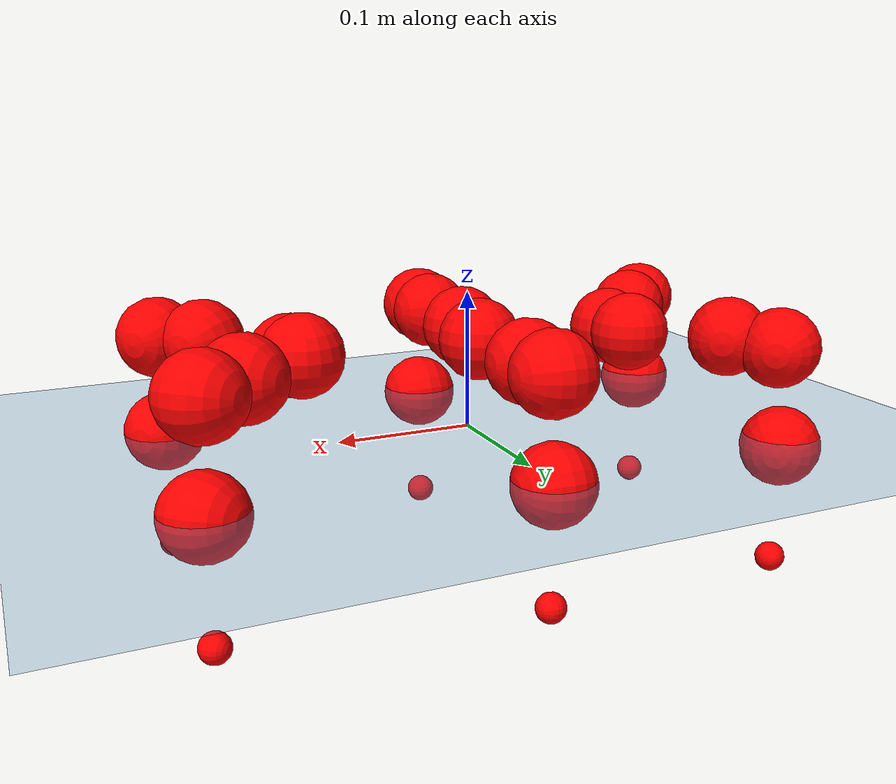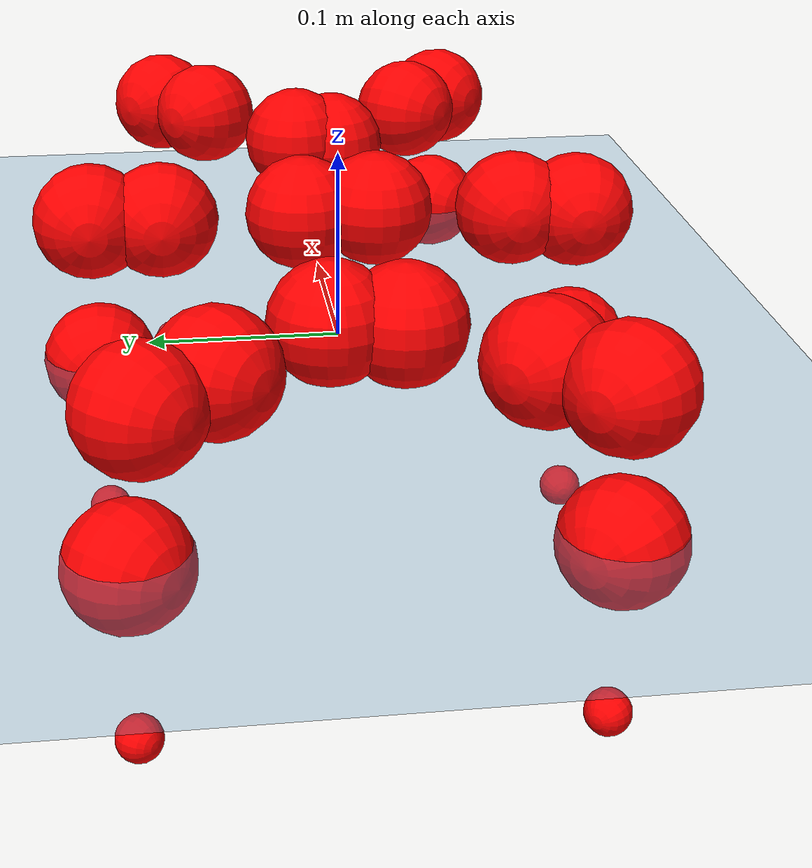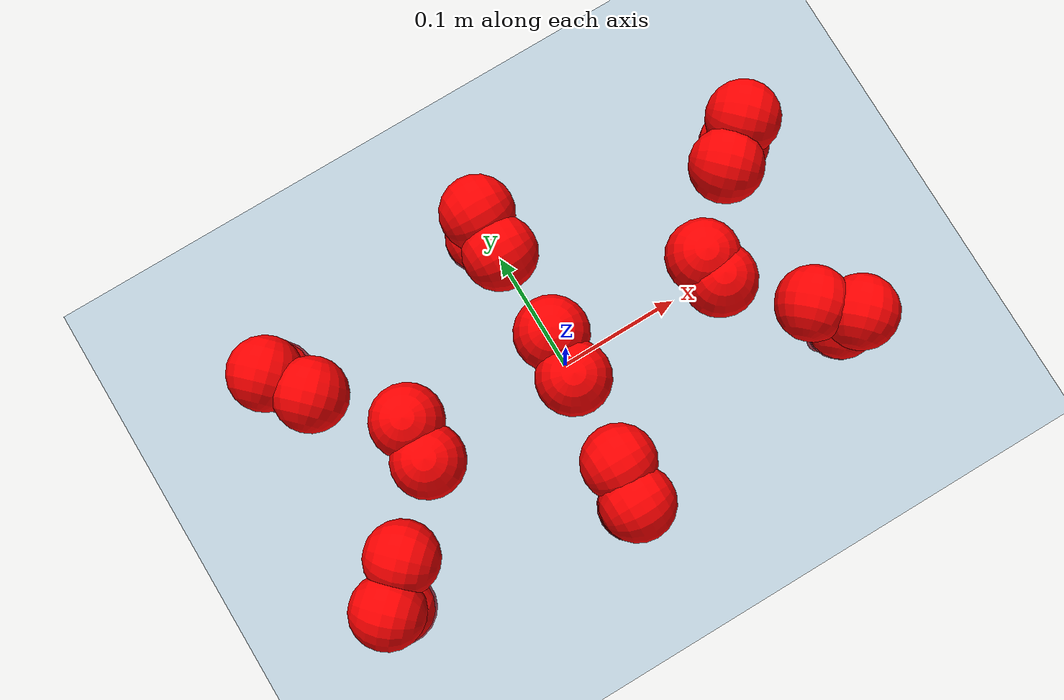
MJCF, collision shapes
<mujoco model="Golem">
  <compiler angle="radian" assetdir="assets" balanceinertia="true" inertiafromgeom="false"/>

  <option timestep="0.005" density="1.2" viscosity="2e-05"/>

  <size nkey="1"/>

  <visual>
    <quality shadowsize="8192"/>
    <map shadowclip="0.5"/>
  </visual>

  <default>
    <default class="/">
      <joint armature="0.01" damping="0.01" frictionloss="0.01"/>
      <geom contype="0" conaffinity="0" group="1" solref="-1000 -80"/>
      <site size="0.01 0.005 0.005" group="5"/>
      <general forcelimited="true" biastype="affine" gainprm="25" biasprm="0 -25 -0.5"/>
      <default class="visual">
        <geom type="mesh" group="2"/>
      </default>
      <default class="collision">
        <geom group="3"/>
      </default>
      <default class="foot">
        <geom size="0.01 0 0" condim="6" group="4" priority="1" solimp="0.015 1 0.01"/>
      </default>
      <default class="reward_collision_sphere">
        <geom group="5" rgba="1 0 0 1"/>
      </default>
    </default>
  </default>

  <asset>
    <texture type="skybox" colorspace="auto" name="//unnamed_texture_0" builtin="gradient" rgb1="0.95 0.95 0.95" rgb2="0.95 0.95 0.95" width="100" height="600"/>
    <texture type="2d" colorspace="auto" name="texplane" builtin="checker" rgb1="0.345 0.575 0.748" rgb2="0.345 0.575 0.748" markrgb="1 1 1" width="512" height="512"/>
    <material name="MatPlane" class="/" texture="texplane" texuniform="true" texrepeat="2 2" specular="0.9"/>
    <mesh name="body" class="/" file="body.stl" scale="0.001 0.001 0.001"/>
    <mesh name="coxa" class="/" file="coxa.stl" scale="0.001 0.001 0.001"/>
    <mesh name="femur" class="/" file="femur.stl" scale="0.001 0.001 0.001"/>
    <mesh name="tibia" class="/" file="tibia.stl" scale="0.001 0.001 0.001"/>
    <mesh name="tarsus" class="/" file="tarsus.stl" scale="0.001 0.001 0.001"/>
  </asset>

  <worldbody>
    <geom name="floor" class="/" size="100 100 0.125" type="plane" group="0" material="MatPlane"/>
    <light name="toplight_shadow" class="/" pos="0 0 5" dir="0.0990148 0.0990148 -0.990148" type="directional" ambient="0.04 0.04 0.04" diffuse="0.55 0.55 0.55" specular="0.12 0.12 0.12"/>
    <light name="toplight_fill" class="/" pos="0 0 5" dir="0.0990148 0.0990148 -0.990148" type="directional" castshadow="false" ambient="0.04 0.04 0.04" diffuse="0.3 0.3 0.3" specular="0.08 0.08 0.08"/>
    <body name="trunk" pos="7.92403e-06 -9.19318e-05 0.00235865" quat="0.999999 -0.000902008 -0.000331576 -0.000301278">
      <inertial pos="0.00326646 0.000143417 -0.00276592" quat="1 0.000594832 0.000211455 0.000201879" mass="1.42463" diaginertia="0.00387693 5.31406e-05 0.0111504"/>
      <joint name="//unnamed_joint_0" type="free"/>
      <geom name="//unnamed_geom_1" class="/" pos="0 0 0.0648888" quat="1 0 0 0" type="mesh" rgba="0.9 0.9 0.9 1" mesh="body"/>
      <site name="imu" class="/" pos="0.100259 -0.0107731 0.097523" size="0.00728899"/>
      <camera name="track" class="/" pos="0 -0.702818 0" quat="0.707107 0.707107 0 0" mode="trackcom"/>
      <camera name="ego_camera" class="/" pos="0.106782 0 0.101389" quat="-0.5 -0.5 0.5 0.5"/>
      <body name="coxa_RR" pos="-0.145344 -0.0324153 0.0591075" quat="0.381805 1.56943e-05 0.000156769 -0.924243">
        <inertial pos="-0.00109652 0.000790558 0.000754064" quat="0.999962 0.00492393 -6.91286e-05 0.00718531" mass="0.0759808" diaginertia="0.00376171 5.33335e-05 0.0109064"/>
        <joint name="coxa_joint_RR" class="/" pos="0 0 0" axis="-0.00605087 -0.00391169 -0.999974" stiffness="0.00730611" range="-3.15414 3.15286" armature="0.00721346" damping="0" frictionloss="0.00805176"/>
        <geom name="//unnamed_geom_2" class="/" type="mesh" rgba="0.2 0.2 0.2 1" mesh="coxa"/>
        <geom name="//unnamed_geom_3" class="reward_collision_sphere" size="0.029156" pos="-0.024642 0 0"/>
        <body name="femur_RR" pos="0.0489934 -7.61957e-05 0.00303951" quat="0.50056 -0.499641 0.499892 0.499906">
          <inertial pos="-0.000934815 0.000761627 -0.00233164" quat="1 8.65255e-05 -0.000141314 -1.15013e-05" mass="0.0768447" diaginertia="0.0038545 5.5112e-05 0.0103383"/>
          <joint name="femur_joint_RR" class="/" pos="0 0 0" axis="-0.0119337 0.0039802 -0.999921" range="-3.15219 3.1263" armature="0.00738747" damping="0" frictionloss="0.00631176"/>
          <geom name="//unnamed_geom_4" class="/" type="mesh" rgba="0.9 0.9 0.9 1" mesh="femur"/>
          <geom name="//unnamed_geom_5" class="reward_collision_sphere" size="0.029156"/>
          <body name="tibia_RR" pos="0.000218291 -0.0397082 -0.000109036" quat="0.000154817 1 0.000585396 -5.57541e-05">
            <inertial pos="0.000658339 0.00217941 0.00146326" quat="1 4.06482e-05 0.000194987 -0.000396277" mass="0.0778806" diaginertia="0.00360871 5.36228e-05 0.0106798"/>
            <joint name="tibia_joint_RR" class="/" pos="0 0 0" axis="0.00218155 -0.00381885 0.99999" stiffness="0.00995531" range="-3.15878 3.12789" armature="0.00712384" damping="0.00882611" frictionloss="0.00674895"/>
            <geom name="//unnamed_geom_6" class="/" type="mesh" rgba="0.2 0.2 0.2 1" mesh="tibia"/>
            <geom name="//unnamed_geom_7" class="reward_collision_sphere" size="0.029156"/>
            <body name="tarsus_RR" pos="0.0722951 0.00153888 -0.000553681" quat="0.999999 0.000253843 -0.00079684 -0.00115943">
              <inertial pos="0.0494891 -0.000587045 0.00175955" quat="0.50339 0.497087 0.499761 0.499743" mass="0.078755" diaginertia="0.00396415 5.36873e-05 0.0112983"/>
              <joint name="tarsus_joint_RR" class="/" pos="0 0 0" axis="0.000115812 0.00164852 0.999999" range="-3.19151 3.11144" armature="0.00640017" damping="0.0160254" frictionloss="0.0079512"/>
              <geom name="//unnamed_geom_8" class="/" type="mesh" rgba="0.9 0.9 0.9 1" mesh="tarsus"/>
              <geom name="foot_1" class="foot" size="0.00788229" pos="0.0919968 0 0" quat="0 -0.707107 0 0.707107"/>
              <geom name="//unnamed_geom_10" class="reward_collision_sphere" size="0.029156"/>
              <geom name="//unnamed_geom_11" class="reward_collision_sphere" size="0.0109335" pos="0.0883005 0 0"/>
              <site name="foot_1" class="foot" pos="0.0919968 0 0" quat="0 -0.707107 0 0.707107" size="0.00728899"/>
            </body>
          </body>
        </body>
      </body>
      <body name="coxa_RM" pos="-0.00417969 -0.0432106 0.0692317" quat="0.706957 -0.000218272 2.32348e-07 -0.707256">
        <inertial pos="0.00259015 0.000170908 0.00280456" quat="1 -0.000165335 0.000303409 -0.000270805" mass="0.075061" diaginertia="0.00366816 5.22333e-05 0.0104892"/>
        <joint name="coxa_joint_RM" class="/" pos="0 0 0" axis="-0.000924822 -0.000759868 -0.999999" range="-3.13926 3.14722" armature="0.00669593" damping="0.0178437" frictionloss="0.00680249"/>
        <geom name="//unnamed_geom_12" class="/" type="mesh" rgba="0.2 0.2 0.2 1" mesh="coxa"/>
        <geom name="//unnamed_geom_13" class="reward_collision_sphere" size="0.029156" pos="-0.024642 0 0"/>
        <body name="femur_RM" pos="0.0456701 -0.00380336 -0.00160641" quat="0.500138 -0.49995 0.499952 0.499961">
          <inertial pos="0.00187844 0.00205329 0.000371007" quat="0.999931 0.00842767 0.00802236 -0.00130575" mass="0.0811434" diaginertia="0.00385118 5.24781e-05 0.0104944"/>
          <joint name="femur_joint_RM" class="/" pos="0 0 0" axis="-0.0133522 0.00220755 -0.999908" stiffness="0.000501774" range="-3.19016 3.15646" armature="0.00718529" damping="0.0170752" frictionloss="0.0078738"/>
          <geom name="//unnamed_geom_14" class="/" type="mesh" rgba="0.9 0.9 0.9 1" mesh="femur"/>
          <geom name="//unnamed_geom_15" class="reward_collision_sphere" size="0.029156"/>
          <body name="tibia_RM" pos="0.000953285 -0.0328722 -0.00360529" quat="-0.000286264 1 0.000129822 0.000452196">
            <inertial pos="0.00279647 -0.00328941 0.000263353" quat="1 0.000123074 -7.52611e-05 -0.000757263" mass="0.0769376" diaginertia="0.00367258 5.275e-05 0.0106398"/>
            <joint name="tibia_joint_RM" class="/" pos="0 0 0" axis="-0.00101323 0.00212467 0.999997" range="-3.10268 3.08527" armature="0.00710414" damping="0.0205709" frictionloss="0.00668727"/>
            <geom name="//unnamed_geom_16" class="/" type="mesh" rgba="0.2 0.2 0.2 1" mesh="tibia"/>
            <geom name="//unnamed_geom_17" class="reward_collision_sphere" size="0.029156"/>
            <body name="tarsus_RM" pos="0.0750071 0.000745997 -0.000596572" quat="1 -0.000260211 0.000135802 -0.000107015">
              <inertial pos="0.05129 -0.00196119 -0.000152216" quat="0.500279 0.504045 0.493654 0.501962" mass="0.0791929" diaginertia="0.00384997 5.52845e-05 0.0104594"/>
              <joint name="tarsus_joint_RM" class="/" pos="0 0 0" axis="0.00058946 -0.000595801 1" stiffness="0.00600226" range="-3.15963 3.18943" armature="0.00649962" damping="0.00597532" frictionloss="0.00711237"/>
              <geom name="//unnamed_geom_18" class="/" type="mesh" rgba="0.9 0.9 0.9 1" mesh="tarsus"/>
              <geom name="foot_2" class="foot" size="0.00710283" pos="0.0919968 0 0" quat="0 -0.707107 0 0.707107"/>
              <geom name="//unnamed_geom_20" class="reward_collision_sphere" size="0.029156"/>
              <geom name="//unnamed_geom_21" class="reward_collision_sphere" size="0.0109335" pos="0.0883005 0 0"/>
              <site name="foot_2" class="foot" pos="0.0919968 0 0" quat="0 -0.707107 0 0.707107" size="0.00728899"/>
            </body>
          </body>
        </body>
      </body>
      <body name="coxa_RF" pos="0.146314 -0.0286774 0.0619547" quat="0.923716 1.09671e-05 -0.00039134 -0.383078">
        <inertial pos="-0.00109017 0.00223837 0.00219518" quat="0.999978 -0.006329 0.00210132 -0.000340644" mass="0.074665" diaginertia="0.00379352 5.47759e-05 0.0106942"/>
        <joint name="coxa_joint_RF" class="/" pos="0 0 0" axis="0.0028165 -0.00196856 -0.999994" range="-3.19378 3.12444" armature="0.00660704" damping="0.0277455" frictionloss="0.00692716"/>
        <geom name="//unnamed_geom_22" class="/" type="mesh" rgba="0.2 0.2 0.2 1" mesh="coxa"/>
        <geom name="//unnamed_geom_23" class="reward_collision_sphere" size="0.029156" pos="-0.024642 0 0"/>
        <body name="femur_RF" pos="0.0462412 -0.0017913 0.00445956" quat="0.500024 -0.500128 0.50002 0.499828">
          <inertial pos="0.000451158 -0.00119054 -0.000633036" quat="0.999987 -0.0042083 -0.00232136 0.00185629" mass="0.0759242" diaginertia="0.00368865 5.49096e-05 0.010539"/>
          <joint name="femur_joint_RF" class="/" pos="0 0 0" axis="-0.00427161 0.0126439 -0.999911" stiffness="0.00311839" range="-3.10973 3.13985" armature="0.00791501" damping="0" frictionloss="0.00748509"/>
          <geom name="//unnamed_geom_24" class="/" type="mesh" rgba="0.9 0.9 0.9 1" mesh="femur"/>
          <geom name="//unnamed_geom_25" class="reward_collision_sphere" size="0.029156"/>
          <body name="tibia_RF" pos="0.000565133 -0.036432 0.00249921" quat="-0.000485709 1 -0.000166998 -0.000336301">
            <inertial pos="0.00111108 0.00235076 -0.00275631" quat="0.999968 0.00760893 -0.00227171 -0.00106684" mass="0.0774942" diaginertia="0.00374016 5.15448e-05 0.0100948"/>
            <joint name="tibia_joint_RF" class="/" pos="0 0 0" axis="0.000433997 -0.000195998 1" stiffness="0.00127258" range="-3.18362 3.15835" armature="0.00624844" damping="0.00873548" frictionloss="0.00727227"/>
            <geom name="//unnamed_geom_26" class="/" type="mesh" rgba="0.2 0.2 0.2 1" mesh="tibia"/>
            <geom name="//unnamed_geom_27" class="reward_collision_sphere" size="0.029156"/>
            <body name="tarsus_RF" pos="0.0699246 -0.000828576 -0.00223495" quat="1 4.24164e-05 -0.000185844 0.000138759">
              <inertial pos="0.0502503 -0.000832262 -0.00184597" quat="0.500502 0.495202 0.502146 0.502118" mass="0.0760667" diaginertia="0.00375036 5.32239e-05 0.0107831"/>
              <joint name="tarsus_joint_RF" class="/" pos="0 0 0" axis="-0.00496933 0.00217079 0.999985" stiffness="0.000202141" range="-3.16107 3.18746" armature="0.007362" damping="0.0171241" frictionloss="0.00787931"/>
              <geom name="//unnamed_geom_28" class="/" type="mesh" rgba="0.9 0.9 0.9 1" mesh="tarsus"/>
              <geom name="foot_3" class="foot" size="0.00798091" pos="0.0919968 0 0" quat="0 -0.707107 0 0.707107"/>
              <geom name="//unnamed_geom_30" class="reward_collision_sphere" size="0.029156"/>
              <geom name="//unnamed_geom_31" class="reward_collision_sphere" size="0.0109335" pos="0.0883005 0 0"/>
              <site name="foot_3" class="foot" pos="0.0919968 0 0" quat="0 -0.707107 0 0.707107" size="0.00728899"/>
            </body>
          </body>
        </body>
      </body>
      <body name="coxa_LR" pos="-0.143894 0.0358754 0.0610914" quat="0.38274 3.08801e-05 0.000262721 0.923856">
        <inertial pos="-0.000241385 -0.00182537 -0.00186351" quat="0.99999 0.00398192 0.000920979 0.00195208" mass="0.0790593" diaginertia="0.00388929 5.44103e-05 0.0108805"/>
        <joint name="coxa_joint_LR" class="/" pos="0 0 0" axis="0.00493392 -0.00341995 -0.999982" range="-3.18129 3.14544" armature="0.00621528" damping="0.0214245" frictionloss="0.00764303"/>
        <geom name="//unnamed_geom_32" class="/" type="mesh" rgba="0.2 0.2 0.2 1" mesh="coxa"/>
        <geom name="//unnamed_geom_33" class="reward_collision_sphere" size="0.029156" pos="-0.024642 0 0"/>
        <body name="femur_LR" pos="0.0490045 -0.00177049 0.00249455" quat="0.49999 -0.50014 0.49999 0.499879">
          <inertial pos="0.00291595 -0.0012582 -0.00104228" quat="0.999988 -0.00372176 0.00303658 -0.000783488" mass="0.0757754" diaginertia="0.00373549 5.31461e-05 0.0110246"/>
          <joint name="femur_joint_LR" class="/" pos="0 0 0" axis="0.0014754 -0.000550613 0.999999" stiffness="0.00401995" range="-3.08892 3.09675" armature="0.00737067" damping="0.0125922" frictionloss="0.00667734"/>
          <geom name="//unnamed_geom_34" class="/" type="mesh" rgba="0.9 0.9 0.9 1" mesh="femur"/>
          <geom name="//unnamed_geom_35" class="reward_collision_sphere" size="0.029156"/>
          <body name="tibia_LR" pos="0.00386361 -0.0379487 -0.00710446" quat="0.000451352 1 -0.000420354 0.000142684">
            <inertial pos="0.00302298 -0.0038171 0.00398659" quat="0.999921 0.00381714 0.00644184 -0.01007" mass="0.0734047" diaginertia="0.00366258 5.32528e-05 0.0104733"/>
            <joint name="tibia_joint_LR" class="/" pos="0 0 0" axis="-0.00435729 -0.00539494 -0.999976" range="-3.08778 3.14152" armature="0.00764721" damping="0.00660542" frictionloss="0.00640835"/>
            <geom name="//unnamed_geom_36" class="/" type="mesh" rgba="0.2 0.2 0.2 1" mesh="tibia"/>
            <geom name="//unnamed_geom_37" class="reward_collision_sphere" size="0.029156"/>
            <body name="tarsus_LR" pos="0.0718172 0.00636852 0.00469527" quat="0.999999 0.0010901 0.000435255 0.000182737">
              <inertial pos="0.0494128 -0.00163282 -0.00127556" quat="0.500146 0.497559 0.499618 0.502664" mass="0.0791707" diaginertia="0.00383291 5.31e-05 0.0108682"/>
              <joint name="tarsus_joint_LR" class="/" pos="0 0 0" axis="-0.0130712 0.000886972 -0.999914" range="-3.15372 3.13487" armature="0.00727784" damping="0.0195555" frictionloss="0.00776209"/>
              <geom name="//unnamed_geom_38" class="/" type="mesh" rgba="0.9 0.9 0.9 1" mesh="tarsus"/>
              <geom name="foot_4" class="foot" size="0.00731713" pos="0.0919968 0 0" quat="0.707107 0 -0.707107 0"/>
              <geom name="//unnamed_geom_40" class="reward_collision_sphere" size="0.029156"/>
              <geom name="//unnamed_geom_41" class="reward_collision_sphere" size="0.0109335" pos="0.0883005 0 0"/>
              <site name="foot_4" class="foot" pos="0.0919968 0 0" quat="0.707107 0 -0.707107 0" size="0.00728899"/>
            </body>
          </body>
        </body>
      </body>
      <body name="coxa_LM" pos="-0.000836487 0.0431883 0.067242" quat="0.70729 0.000714608 0.000778373 0.706922">
        <inertial pos="-0.00254716 -0.000228156 0.00210161" quat="0.999994 -0.00182786 -0.00249305 0.00135463" mass="0.0727528" diaginertia="0.00356506 5.23152e-05 0.0107698"/>
        <joint name="coxa_joint_LM" class="/" pos="0 0 0" axis="-0.00103645 0.000116044 -0.999999" range="-3.14997 3.1001" armature="0.00666656" damping="0.0180506" frictionloss="0.00758055"/>
        <geom name="//unnamed_geom_42" class="/" type="mesh" rgba="0.2 0.2 0.2 1" mesh="coxa"/>
        <geom name="//unnamed_geom_43" class="reward_collision_sphere" size="0.029156" pos="-0.024642 0 0"/>
        <body name="femur_LM" pos="0.0473235 0.0019178 -0.000200811" quat="0.500005 -0.499952 0.500029 0.500014">
          <inertial pos="0.000654076 -0.00133998 0.000181834" quat="0.999945 -0.0037363 0.00984249 -0.000214276" mass="0.0775165" diaginertia="0.00367766 5.39209e-05 0.0108048"/>
          <joint name="femur_joint_LM" class="/" pos="0 0 0" axis="-0.000313885 0.0133265 0.999911" stiffness="0.0123751" range="-3.09287 3.13353" armature="0.00631724" damping="0.0120248" frictionloss="0.00797521"/>
          <geom name="//unnamed_geom_44" class="/" type="mesh" rgba="0.9 0.9 0.9 1" mesh="femur"/>
          <geom name="//unnamed_geom_45" class="reward_collision_sphere" size="0.029156"/>
          <body name="tibia_LM" pos="-0.000500387 -0.035228 -0.000909559" quat="-0.00036853 1 0.000305225 0.000327198">
            <inertial pos="0.00120497 -0.00222063 0.000593239" quat="1 0.000402961 0.000232193 -0.000126159" mass="0.0801736" diaginertia="0.0038075 5.42789e-05 0.0110297"/>
            <joint name="tibia_joint_LM" class="/" pos="0 0 0" axis="3.06307e-05 -6.63372e-05 -1" stiffness="0.00903998" range="-3.11543 3.14263" armature="0.00760571" damping="0.00460649" frictionloss="0.00646335"/>
            <geom name="//unnamed_geom_46" class="/" type="mesh" rgba="0.2 0.2 0.2 1" mesh="tibia"/>
            <geom name="//unnamed_geom_47" class="reward_collision_sphere" size="0.029156"/>
            <body name="tarsus_LM" pos="0.0750222 -0.000617258 -0.00245454" quat="1 0.000121446 9.26718e-06 6.7265e-05">
              <inertial pos="0.0468643 -0.0017428 -0.000140511" quat="0.502362 0.500082 0.497473 0.500071" mass="0.0770847" diaginertia="0.00383106 5.46666e-05 0.0110012"/>
              <joint name="tarsus_joint_LM" class="/" pos="0 0 0" axis="0.00292328 -0.00180794 -0.999994" range="-3.08847 3.11234" armature="0.00723099" damping="0" frictionloss="0.0070762"/>
              <geom name="//unnamed_geom_48" class="/" type="mesh" rgba="0.9 0.9 0.9 1" mesh="tarsus"/>
              <geom name="foot_5" class="foot" size="0.00773943" pos="0.0919968 0 0" quat="0.707107 0 -0.707107 0"/>
              <geom name="//unnamed_geom_50" class="reward_collision_sphere" size="0.029156"/>
              <geom name="//unnamed_geom_51" class="reward_collision_sphere" size="0.0109335" pos="0.0883005 0 0"/>
              <site name="foot_5" class="foot" pos="0.0919968 0 0" quat="0.707107 0 -0.707107 0" size="0.00728899"/>
            </body>
          </body>
        </body>
      </body>
      <body name="coxa_LF" pos="0.143835 0.0272799 0.0660379" quat="0.924262 0.000241915 0.000716662 0.381758">
        <inertial pos="-0.00110733 -0.00128293 -0.000830463" quat="0.99993 -0.000470705 0.00818697 0.00858522" mass="0.0756249" diaginertia="0.00367203 5.28255e-05 0.0105761"/>
        <joint name="coxa_joint_LF" class="/" pos="0 0 0" axis="0.00472533 -0.00563845 -0.999973" range="-3.17088 3.08324" armature="0.00733392" damping="0.00426093" frictionloss="0.00818295"/>
        <geom name="//unnamed_geom_52" class="/" type="mesh" rgba="0.2 0.2 0.2 1" mesh="coxa"/>
        <geom name="//unnamed_geom_53" class="reward_collision_sphere" size="0.029156" pos="-0.024642 0 0"/>
        <body name="femur_LF" pos="0.0473684 -0.000909692 0.00205834" quat="0.500831 -0.49988 0.499843 0.499445">
          <inertial pos="0.00141247 0.000193514 -0.00122355" quat="0.999958 -0.00600908 0.00609855 -0.00318876" mass="0.0782096" diaginertia="0.003651 5.45121e-05 0.0105458"/>
          <joint name="femur_joint_LF" class="/" pos="0 0 0" axis="0.0102666 -0.00633846 0.999927" range="-3.15072 3.08632" armature="0.00723523" damping="0.00707998" frictionloss="0.00807579"/>
          <geom name="//unnamed_geom_54" class="/" type="mesh" rgba="0.9 0.9 0.9 1" mesh="femur"/>
          <geom name="//unnamed_geom_55" class="reward_collision_sphere" size="0.029156"/>
          <body name="tibia_LF" pos="0.000848877 -0.0394753 -0.00372503" quat="0.000358631 1 0.000199503 -8.79692e-06">
            <inertial pos="0.00161286 -0.000398606 -0.000685142" quat="0.999921 0.00173611 0.00357947 0.0118976" mass="0.0789524" diaginertia="0.00360238 5.17516e-05 0.0103589"/>
            <joint name="tibia_joint_LF" class="/" pos="0 0 0" axis="-0.0117947 0.00283763 -0.999926" stiffness="0.000211864" range="-3.10857 3.13228" armature="0.00825003" damping="0.00192322" frictionloss="0.00667305"/>
            <geom name="//unnamed_geom_56" class="/" type="mesh" rgba="0.2 0.2 0.2 1" mesh="tibia"/>
            <geom name="//unnamed_geom_57" class="reward_collision_sphere" size="0.029156"/>
            <body name="tarsus_LF" pos="0.0744836 0.00260904 0.00244159" quat="1 -0.00019675 0.00019666 -0.000224263">
              <inertial pos="0.0475978 0.000629767 -0.00139062" quat="0.499861 0.499911 0.500241 0.499987" mass="0.0729988" diaginertia="0.00373111 5.18183e-05 0.0104205"/>
              <joint name="tarsus_joint_LF" class="/" pos="0 0 0" axis="-0.00550728 0.00228601 -0.999982" stiffness="0.0377275" range="-3.13784 3.18183" armature="0.0074804" damping="0.0331182" frictionloss="0.0076773"/>
              <geom name="//unnamed_geom_58" class="/" type="mesh" rgba="0.9 0.9 0.9 1" mesh="tarsus"/>
              <geom name="foot_6" class="foot" size="0.00745802" pos="0.0919968 0 0" quat="0.707107 0 -0.707107 0"/>
              <geom name="//unnamed_geom_60" class="reward_collision_sphere" size="0.029156"/>
              <geom name="//unnamed_geom_61" class="reward_collision_sphere" size="0.0109335" pos="0.0883005 0 0"/>
              <site name="foot_6" class="foot" pos="0.0919968 0 0" quat="0.707107 0 -0.707107 0" size="0.00728899"/>
            </body>
          </body>
        </body>
      </body>
    </body>
  </worldbody>

  <contact>
    <pair class="/" geom1="floor" geom2="foot_1" name="//unnamed_contact_0"/>
    <pair class="/" geom1="floor" geom2="foot_2" name="//unnamed_contact_1"/>
    <pair class="/" geom1="floor" geom2="foot_3" name="//unnamed_contact_2"/>
    <pair class="/" geom1="floor" geom2="foot_4" name="//unnamed_contact_3"/>
    <pair class="/" geom1="floor" geom2="foot_5" name="//unnamed_contact_4"/>
    <pair class="/" geom1="floor" geom2="foot_6" name="//unnamed_contact_5"/>
  </contact>

  <actuator>
    <general name="coxa_joint_RR" class="/" joint="coxa_joint_RR" forcerange="-5.58553 5.58553" gainprm="18.899" biasprm="0 -18.899 -0.381388"/>
    <general name="femur_joint_RR" class="/" joint="femur_joint_RR" forcerange="-5.86306 5.86306" gainprm="18.899" biasprm="0 -18.899 -0.381388"/>
    <general name="tibia_joint_RR" class="/" joint="tibia_joint_RR" forcerange="-4.84985 4.84985" gainprm="18.899" biasprm="0 -18.899 -0.381388"/>
    <general name="tarsus_joint_RR" class="/" joint="tarsus_joint_RR" forcerange="-5.69892 5.69892" gainprm="18.899" biasprm="0 -18.899 -0.381388"/>
    <general name="coxa_joint_RM" class="/" joint="coxa_joint_RM" forcerange="-5.56532 5.56532" gainprm="18.899" biasprm="0 -18.899 -0.381388"/>
    <general name="femur_joint_RM" class="/" joint="femur_joint_RM" forcerange="-5.40128 5.40128" gainprm="18.899" biasprm="0 -18.899 -0.381388"/>
    <general name="tibia_joint_RM" class="/" joint="tibia_joint_RM" forcerange="-4.78693 4.78693" gainprm="18.899" biasprm="0 -18.899 -0.381388"/>
    <general name="tarsus_joint_RM" class="/" joint="tarsus_joint_RM" forcerange="-5.00428 5.00428" gainprm="18.899" biasprm="0 -18.899 -0.381388"/>
    <general name="coxa_joint_RF" class="/" joint="coxa_joint_RF" forcerange="-5.22828 5.22828" gainprm="18.899" biasprm="0 -18.899 -0.381388"/>
    <general name="femur_joint_RF" class="/" joint="femur_joint_RF" forcerange="-5.42423 5.42423" gainprm="18.899" biasprm="0 -18.899 -0.381388"/>
    <general name="tibia_joint_RF" class="/" joint="tibia_joint_RF" forcerange="-4.77444 4.77444" gainprm="18.899" biasprm="0 -18.899 -0.381388"/>
    <general name="tarsus_joint_RF" class="/" joint="tarsus_joint_RF" forcerange="-5.24283 5.24283" gainprm="18.899" biasprm="0 -18.899 -0.381388"/>
    <general name="coxa_joint_LR" class="/" joint="coxa_joint_LR" forcerange="-5.82946 5.82946" gainprm="18.899" biasprm="0 -18.899 -0.381388"/>
    <general name="femur_joint_LR" class="/" joint="femur_joint_LR" forcerange="-5.01386 5.01386" gainprm="18.899" biasprm="0 -18.899 -0.381388"/>
    <general name="tibia_joint_LR" class="/" joint="tibia_joint_LR" forcerange="-4.78001 4.78001" gainprm="18.899" biasprm="0 -18.899 -0.381388"/>
    <general name="tarsus_joint_LR" class="/" joint="tarsus_joint_LR" forcerange="-5.12441 5.12441" gainprm="18.899" biasprm="0 -18.899 -0.381388"/>
    <general name="coxa_joint_LM" class="/" joint="coxa_joint_LM" forcerange="-5.36335 5.36335" gainprm="18.899" biasprm="0 -18.899 -0.381388"/>
    <general name="femur_joint_LM" class="/" joint="femur_joint_LM" forcerange="-5.37646 5.37646" gainprm="18.899" biasprm="0 -18.899 -0.381388"/>
    <general name="tibia_joint_LM" class="/" joint="tibia_joint_LM" forcerange="-5.62328 5.62328" gainprm="18.899" biasprm="0 -18.899 -0.381388"/>
    <general name="tarsus_joint_LM" class="/" joint="tarsus_joint_LM" forcerange="-5.35605 5.35605" gainprm="18.899" biasprm="0 -18.899 -0.381388"/>
    <general name="coxa_joint_LF" class="/" joint="coxa_joint_LF" forcerange="-5.38616 5.38616" gainprm="18.899" biasprm="0 -18.899 -0.381388"/>
    <general name="femur_joint_LF" class="/" joint="femur_joint_LF" forcerange="-5.3352 5.3352" gainprm="18.899" biasprm="0 -18.899 -0.381388"/>
    <general name="tibia_joint_LF" class="/" joint="tibia_joint_LF" forcerange="-5.51415 5.51415" gainprm="18.899" biasprm="0 -18.899 -0.381388"/>
    <general name="tarsus_joint_LF" class="/" joint="tarsus_joint_LF" forcerange="-4.81115 4.81115" gainprm="18.899" biasprm="0 -18.899 -0.381388"/>
  </actuator>

  <sensor>
    <gyro site="imu" name="imu_angular_velocity"/>
    <velocimeter site="imu" name="imu_linear_velocity"/>
    <framelinvel objtype="site" objname="foot_1" name="foot_1_global_linear_velocity"/>
    <framelinvel objtype="site" objname="foot_2" name="foot_2_global_linear_velocity"/>
    <framelinvel objtype="site" objname="foot_3" name="foot_3_global_linear_velocity"/>
    <framelinvel objtype="site" objname="foot_4" name="foot_4_global_linear_velocity"/>
    <framelinvel objtype="site" objname="foot_5" name="foot_5_global_linear_velocity"/>
    <framelinvel objtype="site" objname="foot_6" name="foot_6_global_linear_velocity"/>
  </sensor>

  <keyframe>
    <key name="home" qpos="0 0 0.1457 1 0 0 0 0 0 0 0 0 0 0 0 0 0 0 0 0 0 0 0 0 0 0 0 0 0 0 0"/>
  </keyframe>
</mujoco>
